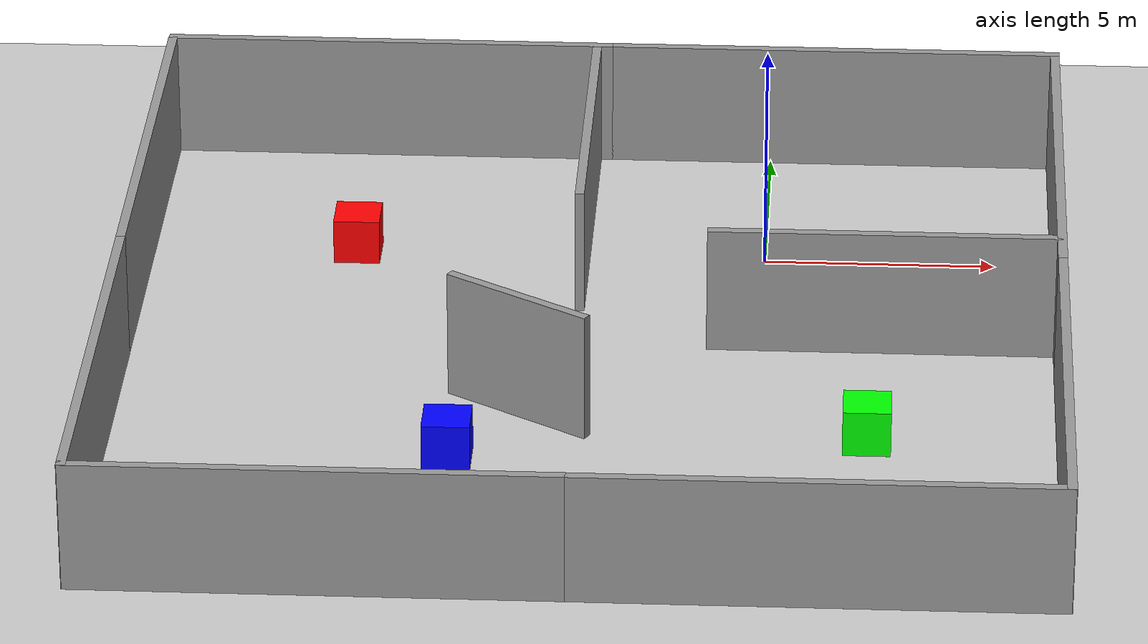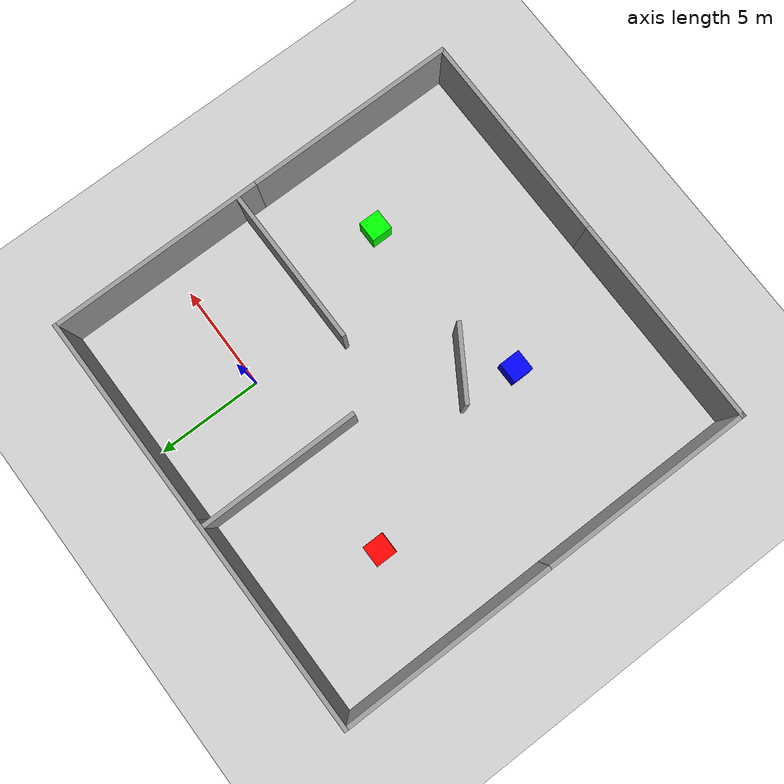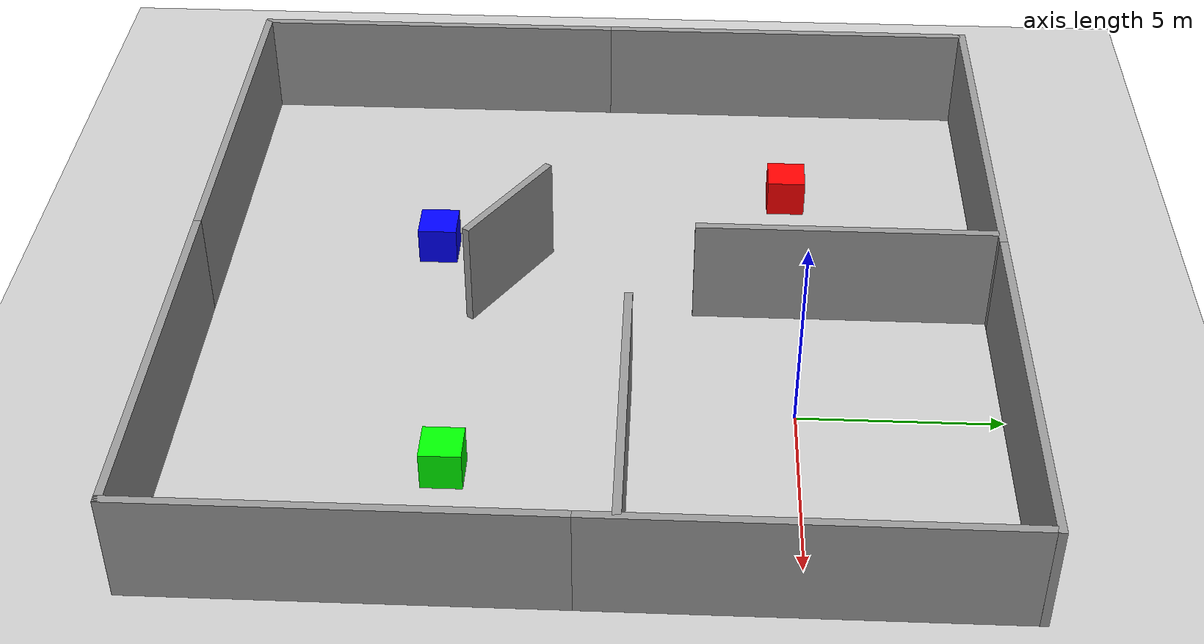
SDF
<sdf version="1.7">
 <world name="default">
  <light name="sun" type="directional">
   <pose>0 0 10 0 -0 0</pose>
   <diffuse>0.8 0.8 0.8 1</diffuse>
   <specular>0.2 0.2 0.2 1</specular>
   <attenuation>
    <range>1000</range>
    <constant>0.9</constant>
    <linear>0.01</linear>
    <quadratic>0.001</quadratic>
   </attenuation>
   <direction>-0.5 0.1 -0.9</direction>
   <spot><inner_angle>0</inner_angle><outer_angle>0</outer_angle><falloff>0</falloff></spot>
  </light>
  <model name="ground_plane">
   <static>1</static>
   <link name="link">
    <collision name="collision">
     <geometry><plane><normal>0 0 1</normal><size>100 100</size></plane></geometry>
     <surface>
      <contact><collide_bitmask>65535</collide_bitmask></contact>
      <friction><ode><mu>100</mu><mu2>50</mu2></ode></friction>
     </surface>
    </collision>
    <visual name="visual">
     <cast_shadows>0</cast_shadows>
     <geometry><plane><normal>0 0 1</normal><size>100 100</size></plane></geometry>
     <material>
      <script><uri>file://media/materials/scripts/gazebo.material</uri><name>Gazebo/Grey</name></script>
     </material>
    </visual>
   </link>
  </model>
  <gravity>0 0 -9.8</gravity>
  <magnetic_field>6e-06 2.3e-05 -4.2e-05</magnetic_field>
  <atmosphere type="adiabatic"/>
  <physics type="ode">
   <max_step_size>0.001</max_step_size>
   <real_time_factor>1</real_time_factor>
   <real_time_update_rate>1000</real_time_update_rate>
  </physics>
  <scene><ambient>0.4 0.4 0.4 1</ambient><background>0.7 0.7 0.7 1</background><shadows>1</shadows></scene>
  <audio><device>default</device></audio>
  <spherical_coordinates>
   <surface_model>EARTH_WGS84</surface_model>
   <latitude_deg>0</latitude_deg>
   <longitude_deg>0</longitude_deg>
   <elevation>0</elevation>
   <heading_deg>0</heading_deg>
  </spherical_coordinates>
  <model name="grey_wall_medium">
   <static>1</static>
   <link name="link">
    <pose>0 0 1.4 0 -0 0</pose>
    <collision name="collision"><geometry><box><size>10 0.2 2.8</size></box></geometry></collision>
    <visual name="visual">
     <cast_shadows>0</cast_shadows>
     <geometry><box><size>10 0.2 2.8</size></box></geometry>
     <material>
      <script>
       <uri>model://grey_wall_medium/materials/scripts</uri>
       <uri>model://grey_wall_medium/materials/textures</uri>
       <name>vrc/grey_wall_medium</name>
      </script>
     </material>
    </visual>
   </link>
   <pose>1.42098 5.06471 0 0 -0 0</pose>
  </model>
  <model name="grey_wall_medium_clone">
   <static>1</static>
   <link name="link">
    <pose>0 0 1.4 0 -0 0</pose>
    <collision name="collision"><geometry><box><size>10 0.2 2.8</size></box></geometry></collision>
    <visual name="visual">
     <cast_shadows>0</cast_shadows>
     <geometry><box><size>10 0.2 2.8</size></box></geometry>
     <material>
      <script>
       <uri>model://grey_wall_medium/materials/scripts</uri>
       <uri>model://grey_wall_medium/materials/textures</uri>
       <name>vrc/grey_wall_medium</name>
      </script>
     </material>
    </visual>
   </link>
   <pose>-8.57383 5.06471 0 0 -0 0</pose>
  </model>
  <model name="grey_wall_medium_clone_0_clone">
   <static>1</static>
   <link name="link">
    <pose>0 0 1.4 0 -0 0</pose>
    <collision name="collision"><geometry><box><size>10 0.2 2.8</size></box></geometry></collision>
    <visual name="visual">
     <cast_shadows>0</cast_shadows>
     <geometry><box><size>10 0.2 2.8</size></box></geometry>
     <material>
      <script>
       <uri>model://grey_wall_medium/materials/scripts</uri>
       <uri>model://grey_wall_medium/materials/textures</uri>
       <name>vrc/grey_wall_medium</name>
      </script>
     </material>
    </visual>
   </link>
   <pose>6.30764 -10.0117 0 0 -0 1.57023</pose>
  </model>
  <model name="grey_wall_medium_clone_0_clone_clone">
   <static>1</static>
   <link name="link">
    <pose>0 0 1.4 0 -0 0</pose>
    <collision name="collision"><geometry><box><size>10 0.2 2.8</size></box></geometry></collision>
    <visual name="visual">
     <cast_shadows>0</cast_shadows>
     <geometry><box><size>10 0.2 2.8</size></box></geometry>
     <material>
      <script>
       <uri>model://grey_wall_medium/materials/scripts</uri>
       <uri>model://grey_wall_medium/materials/textures</uri>
       <name>vrc/grey_wall_medium</name>
      </script>
     </material>
    </visual>
   </link>
   <pose>6.31439 -0.01234 0 0 -0 1.57023</pose>
  </model>
  <model name="grey_wall_medium_clone_0_clone_clone_clone">
   <static>1</static>
   <link name="link">
    <pose>0 0 1.4 0 -0 0</pose>
    <collision name="collision"><geometry><box><size>10 0.2 2.8</size></box></geometry></collision>
    <visual name="visual">
     <cast_shadows>0</cast_shadows>
     <geometry><box><size>10 0.2 2.8</size></box></geometry>
     <material>
      <script>
       <uri>model://grey_wall_medium/materials/scripts</uri>
       <uri>model://grey_wall_medium/materials/textures</uri>
       <name>vrc/grey_wall_medium</name>
      </script>
     </material>
    </visual>
   </link>
   <pose>-13.4891 0.003047 0 0 -0 1.57023</pose>
  </model>
  <model name="grey_wall_medium_clone_0_clone_clone_clone_0">
   <static>1</static>
   <link name="link">
    <pose>0 0 1.4 0 -0 0</pose>
    <collision name="collision"><geometry><box><size>10 0.2 2.8</size></box></geometry></collision>
    <visual name="visual">
     <cast_shadows>0</cast_shadows>
     <geometry><box><size>10 0.2 2.8</size></box></geometry>
     <material>
      <script>
       <uri>model://grey_wall_medium/materials/scripts</uri>
       <uri>model://grey_wall_medium/materials/textures</uri>
       <name>vrc/grey_wall_medium</name>
      </script>
     </material>
    </visual>
   </link>
   <pose>-13.4931 -9.99219 0 0 -0 1.57023</pose>
  </model>
  <model name="grey_wall_medium_clone_0">
   <static>1</static>
   <link name="link">
    <pose>0 0 1.4 0 -0 0</pose>
    <collision name="collision"><geometry><box><size>10 0.2 2.8</size></box></geometry></collision>
    <visual name="visual">
     <cast_shadows>0</cast_shadows>
     <geometry><box><size>10 0.2 2.8</size></box></geometry>
     <material>
      <script>
       <uri>model://grey_wall_medium/materials/scripts</uri>
       <uri>model://grey_wall_medium/materials/textures</uri>
       <name>vrc/grey_wall_medium</name>
      </script>
     </material>
    </visual>
   </link>
   <pose>1.39253 -14.9132 0 0 -0 0</pose>
  </model>
  <model name="grey_wall_medium_clone_1">
   <static>1</static>
   <link name="link">
    <pose>0 0 1.4 0 -0 0</pose>
    <collision name="collision"><geometry><box><size>10 0.2 2.8</size></box></geometry></collision>
    <visual name="visual">
     <cast_shadows>0</cast_shadows>
     <geometry><box><size>10 0.2 2.8</size></box></geometry>
     <material>
      <script>
       <uri>model://grey_wall_medium/materials/scripts</uri>
       <uri>model://grey_wall_medium/materials/textures</uri>
       <name>vrc/grey_wall_medium</name>
      </script>
     </material>
    </visual>
   </link>
   <pose>-8.58276 -14.9132 0 0 -0 0</pose>
  </model>
  <model name="grey_wall_small">
   <static>1</static>
   <link name="link">
    <pose>0 0 1.4 0 -0 0</pose>
    <collision name="collision"><geometry><box><size>7.5 0.2 2.8</size></box></geometry></collision>
    <visual name="visual">
     <cast_shadows>0</cast_shadows>
     <geometry><box><size>7.5 0.2 2.8</size></box></geometry>
     <material>
      <script>
       <uri>model://grey_wall_small/materials/scripts</uri>
       <uri>model://grey_wall_small/materials/textures</uri>
       <name>vrc/grey_wall_small</name>
      </script>
     </material>
    </visual>
   </link>
   <pose>2.5905 -4.07406 0 0 -0 0</pose>
  </model>
  <model name="grey_wall_small_clone">
   <static>1</static>
   <link name="link">
    <pose>0 0 1.4 0 -0 0</pose>
    <collision name="collision"><geometry><box><size>7.5 0.2 2.8</size></box></geometry></collision>
    <visual name="visual">
     <cast_shadows>0</cast_shadows>
     <geometry><box><size>7.5 0.2 2.8</size></box></geometry>
     <material>
      <script>
       <uri>model://grey_wall_small/materials/scripts</uri>
       <uri>model://grey_wall_small/materials/textures</uri>
       <name>vrc/grey_wall_small</name>
      </script>
     </material>
    </visual>
   </link>
   <pose>-3.93392 1.24192 0 0 0 -1.57263</pose>
  </model>
  <model name="grey_wall_smaller">
   <static>1</static>
   <link name="link">
    <pose>0 0 1.4 0 -0 0</pose>
    <collision name="collision"><geometry><box><size>3.5 0.2 2.8</size></box></geometry></collision>
    <visual name="visual">
     <cast_shadows>0</cast_shadows>
     <geometry><box><size>3.5 0.2 2.8</size></box></geometry>
     <material>
      <script>
       <uri>model://grey_wall_smaller/materials/scripts</uri>
       <uri>model://grey_wall_smaller/materials/textures</uri>
       <name>vrc/grey_wall_smaller</name>
      </script>
     </material>
    </visual>
   </link>
   <pose>-4.97742 -7.26344 0 0 0 -0.564726</pose>
  </model>
  <model name="blue_box_3">
   <pose>-6.32562 -9.26665 0.5 0 -0 0</pose>
   <static>1</static>
   <link name="link">
    <inertial>
     <mass>1</mass>
     <inertia><ixx>0.083</ixx><ixy>0</ixy><ixz>0</ixz><iyy>0.083</iyy><iyz>0</iyz><izz>0.083</izz></inertia>
    </inertial>
    <collision name="collision"><geometry><box><size>1 1 1</size></box></geometry></collision>
    <visual name="visual">
     <geometry><box><size>1 1 1</size></box></geometry>
     <material>
      <ambient>0 0 1 1</ambient>
      <diffuse>0 0 1 1</diffuse>
      <specular>0.1 0.1 0.1 1</specular>
      <emissive>0 0 0 1</emissive>
     </material>
    </visual>
   </link>
  </model>
  <model name="green_box">
   <pose>2.28933 -8.24112 0.5 0 -0 0</pose>
   <static>1</static>
   <link name="link">
    <inertial>
     <mass>1</mass>
     <inertia><ixx>0.083</ixx><ixy>0</ixy><ixz>0</ixz><iyy>0.083</iyy><iyz>0</iyz><izz>0.083</izz></inertia>
    </inertial>
    <collision name="collision"><geometry><box><size>1 1 1</size></box></geometry></collision>
    <visual name="visual">
     <geometry><box><size>1 1 1</size></box></geometry>
     <material>
      <ambient>0 1 0 1</ambient>
      <diffuse>0 1 0 1</diffuse>
      <specular>0.1 0.1 0.1 1</specular>
      <emissive>0 0 0 1</emissive>
     </material>
    </visual>
   </link>
  </model>
  <model name="red_box">
   <pose>-8.9247 0.009007 0.5 0 -0 0</pose>
   <static>1</static>
   <link name="link">
    <inertial>
     <mass>1</mass>
     <inertia><ixx>0.083</ixx><ixy>0</ixy><ixz>0</ixz><iyy>0.083</iyy><iyz>0</iyz><izz>0.083</izz></inertia>
    </inertial>
    <collision name="collision"><geometry><box><size>1 1 1</size></box></geometry></collision>
    <visual name="visual">
     <geometry><box><size>1 1 1</size></box></geometry>
     <material>
      <ambient>1 0 0 1</ambient>
      <diffuse>1 0 0 1</diffuse>
      <specular>0.1 0.1 0.1 1</specular>
      <emissive>0 0 0 1</emissive>
     </material>
    </visual>
   </link>
  </model>
 </world>
</sdf>
